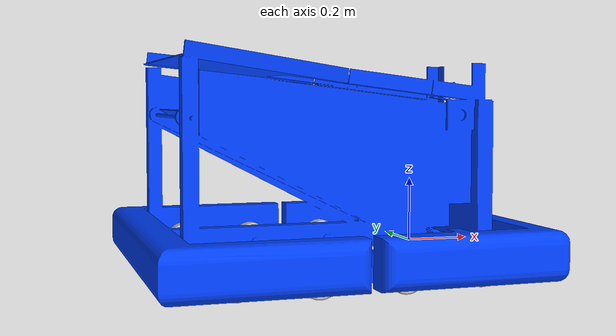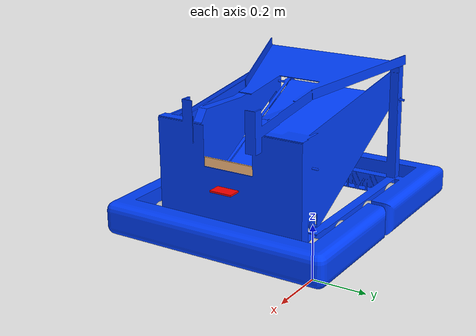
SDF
<?xml version="1.0" encoding="utf-8"?>
<sdf version="1.5">
  <model name="SimBot">
    <pose>0 0 0.00254000000000018 0 0 0</pose>

    <link name="Chassis">
      <gravity>1</gravity>
      <self_collide>0</self_collide>
      <pose>-0.417787729909074 -0.370900839250168 0.109796495445787 1.5707963267949 9.43689570931383E-16 -1.5707963267949</pose>
      <must_be_base_link>1</must_be_base_link>
      <velocity_decay>
        <linear>0</linear>
        <angular>0</angular>
      </velocity_decay>
      <inertial>
        <mass>48.6161363090323</mass>
        <pose>0 0 0 0 0 0</pose>
        <inertia>
          <ixx>6.85956286111502</ixx>
          <ixy>0.0505958405428025</ixy>
          <ixz>0.0454904755903607</ixz>
          <iyy>11.0679921953325</iyy>
          <iyz>0.0206054821955621</iyz>
          <izz>5.66912323899694</izz>
        </inertia>
      </inertial>
      <collision name="Chassis_collision">
        <pose>0.00374916074983288 -0.143685830615581 -0.417787729909074 0 0 0</pose>
        <geometry>
          <mesh>
            <scale>1 1 1</scale>
            <uri>model://SimBot/meshes/Chassis_col.STL</uri>
          </mesh>
        </geometry>
        <surface>
          <contact>
            <ode />
          </contact>
          <friction>
            <ode>
              <mu>0</mu>
              <mu2>0</mu2>
            </ode>
          </friction>
        </surface>
      </collision>
      <visual name="Chassis_visual">
        <pose>0.00374916074983288 -0.143685830615581 -0.417787729909074 0 0 0</pose>
        <material>
          <ambient>0 0.250980392156863 1 1</ambient>
          <diffuse>0 0.250980392156863 1 1</diffuse>
        </material>
        <geometry>
          <mesh>
            <scale>1 1 1</scale>
            <uri>model://SimBot/meshes/Chassis.STL</uri>
          </mesh>
        </geometry>
      </visual>
      <sensor name="ChassisCamera" type="camera">
        <visualize>1</visualize>
        <always_on>1</always_on>
        <updateRate>30.0</updateRate>
        <pose>0.17 0.23 -0.37 -1.57 1.57000 0.0</pose>
        <camera name="Chassiscamera">
          <horizontal_fov>0.87</horizontal_fov>
          <image>
            <width>320</width>
            <height>240</height>
          </image>
          <clip>
            <near>0.1</near>
            <far>30</far>
          </clip>
          <save enabled="true">
              <path>/tmp/target-camera</path>
          </save>
        </camera>
      </sensor>
      <sensor name="DriverCamera" type="camera">
        <visualize>0</visualize>
        <always_on>1</always_on>
        <updateRate>10.0</updateRate>
         <pose>0.0 0.23 -0.3 -1.57 1.57 0.0</pose>
        <camera name="Bodycamera">
          <horizontal_fov>1.0471975511966</horizontal_fov>
          <image>
            <width>320</width>
            <height>240</height>
          </image>
          <clip>
            <near>0.01</near>
            <far>30</far>
          </clip>
          <save enabled="true">
              <path>/tmp/driver-camera</path>
          </save>
        </camera>
      </sensor>
      <sensor name="ChassisUltrasonic" type="sonar">
        <always_on>1</always_on>
        <visualize>0</visualize>
        <pose>0.17 0.318095647047724 -0.369811570125635 -0.2 0.2 0</pose>
        <sonar>
          <min>0.1</min>
          <max>2</max>
          <radius>0.2</radius>
        </sonar>
      </sensor>
    </link>
    <link name="L1Wheel">
      <gravity>1</gravity>
      <self_collide>0</self_collide>
      <pose>-0.114300000000001 -0.0431800000000009 0.0349249999999985 1.5707963267949 9.43689570931383E-16 -1.5707963267949</pose>
      <must_be_base_link>0</must_be_base_link>
      <velocity_decay>
        <linear>0</linear>
        <angular>0</angular>
      </velocity_decay>
      <inertial>
        <mass>0.408395441319621</mass>
        <pose>0 0 0 0 0 0</pose>
        <inertia>
          <ixx>0.00522885625259631</ixx>
          <ixy>0</ixy>
          <ixz>0</ixz>
          <iyy>0.00347976426556731</iyy>
          <iyz>0</iyz>
          <izz>0.00347976426556731</izz>
        </inertia>
      </inertial>
      <collision name="L1Wheel_collision">
        <pose>0.33147 -0.0688143351697925 -0.1143 0 0 0</pose>
        <geometry>
          <mesh>
            <scale>1 1 1</scale>
            <uri>model://SimBot/meshes/L1Wheel_col.STL</uri>
          </mesh>
        </geometry>
        <surface>
          <contact>
            <ode />
          </contact>
          <friction>
            <ode>
              <mu>1</mu>
              <mu2>1</mu2>
            </ode>
          </friction>
        </surface>
      </collision>
      <visual name="L1Wheel_visual">
        <pose>0.33147 -0.0688143351697925 -0.1143 0 0 0</pose>
        <material>
          <ambient>0.752941176470588 0.752941176470588 0.752941176470588 1</ambient>
          <diffuse>0.752941176470588 0.752941176470588 0.752941176470588 1</diffuse>
        </material>
        <geometry>
          <mesh>
            <scale>1 1 1</scale>
            <uri>model://SimBot/meshes/L1Wheel.STL</uri>
          </mesh>
        </geometry>
      </visual>
    </link>
    <joint name="Chassis-L1Wheel" type="revolute">
      <parent>Chassis</parent>
      <child>L1Wheel</child>
      <pose>0.02286 9.71445146547012E-17 1.38777878078145E-17 0 0 0</pose>
      <axis>
        <xyz>-1 -3.45075536041801E-15 0</xyz>
        <dynamics>
          <damping>1</damping>
          <friction>1</friction>
        </dynamics>
        <limit>
          <effort>100</effort>
        </limit>
      </axis>
    </joint>
    <link name="L2Wheel">
      <gravity>1</gravity>
      <self_collide>0</self_collide>
      <pose>-0.315134153322 -0.043180000000001 0.0285749999999969 1.5707963267949 9.43689570931383E-16 -1.5707963267949</pose>
      <must_be_base_link>0</must_be_base_link>
      <velocity_decay>
        <linear>0</linear>
        <angular>0</angular>
      </velocity_decay>
      <inertial>
        <mass>0.408395441319621</mass>
        <pose>0 0 0 0 0 0</pose>
        <inertia>
          <ixx>0.00522885625259631</ixx>
          <ixy>0</ixy>
          <ixz>0</ixz>
          <iyy>0.00347976426556731</iyy>
          <iyz>0</iyz>
          <izz>0.00347976426556731</izz>
        </inertia>
      </inertial>
      <collision name="L2Wheel_collision">
        <pose>0.33147 -0.0624643351697909 -0.315134153322 0 0 0</pose>
        <geometry>
          <mesh>
            <scale>1 1 1</scale>
            <uri>model://SimBot/meshes/L2Wheel_col.STL</uri>
          </mesh>
        </geometry>
        <surface>
          <contact>
            <ode />
          </contact>
          <friction>
            <ode>
              <mu>1</mu>
              <mu2>1</mu2>
            </ode>
          </friction>
        </surface>
      </collision>
      <visual name="L2Wheel_visual">
        <pose>0.33147 -0.0624643351697909 -0.315134153322 0 0 0</pose>
        <material>
          <ambient>0.752941176470588 0.752941176470588 0.752941176470588 1</ambient>
          <diffuse>0.752941176470588 0.752941176470588 0.752941176470588 1</diffuse>
        </material>
        <geometry>
          <mesh>
            <scale>1 1 1</scale>
            <uri>model://SimBot/meshes/L2Wheel.STL</uri>
          </mesh>
        </geometry>
      </visual>
    </link>
    <joint name="Chassis-L2Wheel" type="revolute">
      <parent>Chassis</parent>
      <child>L2Wheel</child>
      <pose>0.02286 9.71445146547012E-17 0 0 0 0</pose>
      <axis>
        <xyz>-1 -3.52264609709339E-15 0</xyz>
        <dynamics>
          <damping>1</damping>
          <friction>1</friction>
        </dynamics>
        <limit>
          <effort>100</effort>
        </limit>
      </axis>
    </joint>
    <link name="L3Wheel">
      <gravity>1</gravity>
      <self_collide>0</self_collide>
      <pose>-0.535765846678 -0.0431800000000008 0.0285749999999952 1.5707963267949 9.43689570931383E-16 -1.5707963267949</pose>
      <must_be_base_link>0</must_be_base_link>
      <velocity_decay>
        <linear>0</linear>
        <angular>0</angular>
      </velocity_decay>
      <inertial>
        <mass>0.408395441319621</mass>
        <pose>0 0 0 0 0 0</pose>
        <inertia>
          <ixx>0.00522885625259631</ixx>
          <ixy>0</ixy>
          <ixz>0</ixz>
          <iyy>0.00347976426556731</iyy>
          <iyz>0</iyz>
          <izz>0.00347976426556731</izz>
        </inertia>
      </inertial>
      <collision name="L3Wheel_collision">
        <pose>0.33147 -0.0624643351697891 -0.535765846678 0 0 0</pose>
        <geometry>
          <mesh>
            <scale>1 1 1</scale>
            <uri>model://SimBot/meshes/L3Wheel_col.STL</uri>
          </mesh>
        </geometry>
        <surface>
          <contact>
            <ode />
          </contact>
          <friction>
            <ode>
              <mu>1</mu>
              <mu2>1</mu2>
            </ode>
          </friction>
        </surface>
      </collision>
      <visual name="L3Wheel_visual">
        <pose>0.33147 -0.0624643351697891 -0.535765846678 0 0 0</pose>
        <material>
          <ambient>0.752941176470588 0.752941176470588 0.752941176470588 1</ambient>
          <diffuse>0.752941176470588 0.752941176470588 0.752941176470588 1</diffuse>
        </material>
        <geometry>
          <mesh>
            <scale>1 1 1</scale>
            <uri>model://SimBot/meshes/L3Wheel.STL</uri>
          </mesh>
        </geometry>
      </visual>
    </link>
    <joint name="Chassis-L3Wheel" type="revolute">
      <parent>Chassis</parent>
      <child>L3Wheel</child>
      <pose>0.0228600000000002 9.0205620750794E-17 0 0 0 0</pose>
      <axis>
        <xyz>-1 -3.52264609709339E-15 0</xyz>
        <dynamics>
          <damping>1</damping>
          <friction>1</friction>
        </dynamics>
        <limit>
          <effort>100</effort>
        </limit>
      </axis>
    </joint>
    <link name="L4Wheel">
      <gravity>1</gravity>
      <self_collide>0</self_collide>
      <pose>-0.7366 -0.0431800000000009 0.0349249999999936 1.5707963267949 9.43689570931383E-16 -1.5707963267949</pose>
      <must_be_base_link>0</must_be_base_link>
      <velocity_decay>
        <linear>0</linear>
        <angular>0</angular>
      </velocity_decay>
      <inertial>
        <mass>0.408395441319621</mass>
        <pose>0 0 0 0 0 0</pose>
        <inertia>
          <ixx>0.00522885625259631</ixx>
          <ixy>0</ixy>
          <ixz>0</ixz>
          <iyy>0.00347976426556731</iyy>
          <iyz>0</iyz>
          <izz>0.00347976426556731</izz>
        </inertia>
      </inertial>
      <collision name="L4Wheel_collision">
        <pose>0.33147 -0.0688143351697875 -0.7366 0 0 0</pose>
        <geometry>
          <mesh>
            <scale>1 1 1</scale>
            <uri>model://SimBot/meshes/L4Wheel_col.STL</uri>
          </mesh>
        </geometry>
        <surface>
          <contact>
            <ode />
          </contact>
          <friction>
            <ode>
              <mu>1</mu>
              <mu2>1</mu2>
            </ode>
          </friction>
        </surface>
      </collision>
      <visual name="L4Wheel_visual">
        <pose>0.33147 -0.0688143351697875 -0.7366 0 0 0</pose>
        <material>
          <ambient>0.752941176470588 0.752941176470588 0.752941176470588 1</ambient>
          <diffuse>0.752941176470588 0.752941176470588 0.752941176470588 1</diffuse>
        </material>
        <geometry>
          <mesh>
            <scale>1 1 1</scale>
            <uri>model://SimBot/meshes/L4Wheel.STL</uri>
          </mesh>
        </geometry>
      </visual>
    </link>
    <joint name="Chassis-L4Wheel" type="revolute">
      <parent>Chassis</parent>
      <child>L4Wheel</child>
      <pose>0.0228600000000002 9.71445146547012E-17 2.22044604925031E-16 0 0 0</pose>
      <axis>
        <xyz>-1 -3.45075536041802E-15 0</xyz>
        <dynamics>
          <damping>1</damping>
          <friction>1</friction>
        </dynamics>
        <limit>
          <effort>100</effort>
        </limit>
      </axis>
    </joint>
    <link name="R1Wheel">
      <gravity>1</gravity>
      <self_collide>0</self_collide>
      <pose>-0.114299999999999 -0.706120000000001 0.0349249999999995 1.5707963267949 9.43689570931383E-16 -1.5707963267949</pose>
      <must_be_base_link>0</must_be_base_link>
      <velocity_decay>
        <linear>0</linear>
        <angular>0</angular>
      </velocity_decay>
      <inertial>
        <mass>0.408395441319621</mass>
        <pose>0 0 0 0 0 0</pose>
        <inertia>
          <ixx>0.00522885625259631</ixx>
          <ixy>0</ixy>
          <ixz>0</ixz>
          <iyy>0.00347976426556731</iyy>
          <iyz>0</iyz>
          <izz>0.00347976426556731</izz>
        </inertia>
      </inertial>
      <collision name="R1Wheel_collision">
        <pose>-0.33147 -0.0688143351697941 -0.114299999999999 0 0 0</pose>
        <geometry>
          <mesh>
            <scale>1 1 1</scale>
            <uri>model://SimBot/meshes/R1Wheel_col.STL</uri>
          </mesh>
        </geometry>
        <surface>
          <contact>
            <ode />
          </contact>
          <friction>
            <ode>
              <mu>1</mu>
              <mu2>1</mu2>
            </ode>
          </friction>
        </surface>
      </collision>
      <visual name="R1Wheel_visual">
        <pose>-0.33147 -0.0688143351697941 -0.114299999999999 0 0 0</pose>
        <material>
          <ambient>0.752941176470588 0.752941176470588 0.752941176470588 1</ambient>
          <diffuse>0.752941176470588 0.752941176470588 0.752941176470588 1</diffuse>
        </material>
        <geometry>
          <mesh>
            <scale>1 1 1</scale>
            <uri>model://SimBot/meshes/R1Wheel.STL</uri>
          </mesh>
        </geometry>
      </visual>
    </link>
    <joint name="Chassis-R1Wheel" type="revolute">
      <parent>Chassis</parent>
      <child>R1Wheel</child>
      <pose>-0.0228599999999999 0 0 0 0 0</pose>
      <axis>
        <xyz>1 0 0</xyz>
        <dynamics>
          <damping>1</damping>
          <friction>1</friction>
        </dynamics>
        <limit>
          <effort>100</effort>
        </limit>
      </axis>
    </joint>
    <link name="R2Wheel">
      <gravity>1</gravity>
      <self_collide>0</self_collide>
      <pose>-0.315134153321999 -0.706120000000001 0.028575000000001 1.5707963267949 9.43689570931383E-16 -1.5707963267949</pose>
      <must_be_base_link>0</must_be_base_link>
      <velocity_decay>
        <linear>0</linear>
        <angular>0</angular>
      </velocity_decay>
      <inertial>
        <mass>0.408395441319621</mass>
        <pose>0 0 0 0 0 0</pose>
        <inertia>
          <ixx>0.00522885625259631</ixx>
          <ixy>0</ixy>
          <ixz>0</ixz>
          <iyy>0.00347976426556731</iyy>
          <iyz>0</iyz>
          <izz>0.00347976426556731</izz>
        </inertia>
      </inertial>
      <collision name="R2Wheel_collision">
        <pose>-0.33147 -0.0624643351697957 -0.315134153321999 0 0 0</pose>
        <geometry>
          <mesh>
            <scale>1 1 1</scale>
            <uri>model://SimBot/meshes/R2Wheel_col.STL</uri>
          </mesh>
        </geometry>
        <surface>
          <contact>
            <ode />
          </contact>
          <friction>
            <ode>
              <mu>1</mu>
              <mu2>1</mu2>
            </ode>
          </friction>
        </surface>
      </collision>
      <visual name="R2Wheel_visual">
        <pose>-0.33147 -0.0624643351697957 -0.315134153321999 0 0 0</pose>
        <material>
          <ambient>0.752941176470588 0.752941176470588 0.752941176470588 1</ambient>
          <diffuse>0.752941176470588 0.752941176470588 0.752941176470588 1</diffuse>
        </material>
        <geometry>
          <mesh>
            <scale>1 1 1</scale>
            <uri>model://SimBot/meshes/R2Wheel.STL</uri>
          </mesh>
        </geometry>
      </visual>
    </link>
    <joint name="Chassis-R2Wheel" type="revolute">
      <parent>Chassis</parent>
      <child>R2Wheel</child>
      <pose>-0.02286 0 0 0 0 0</pose>
      <axis>
        <xyz>1 0 0</xyz>
        <dynamics>
          <damping>1</damping>
          <friction>1</friction>
        </dynamics>
        <limit>
          <effort>100</effort>
        </limit>
      </axis>
    </joint>
    <link name="R3Wheel">
      <gravity>1</gravity>
      <self_collide>0</self_collide>
      <pose>-0.535765846677999 -0.706120000000001 0.0285750000000027 1.5707963267949 9.43689570931383E-16 -1.5707963267949</pose>
      <must_be_base_link>0</must_be_base_link>
      <velocity_decay>
        <linear>0</linear>
        <angular>0</angular>
      </velocity_decay>
      <inertial>
        <mass>0.408395441319621</mass>
        <pose>0 0 0 0 0 0</pose>
        <inertia>
          <ixx>0.00522885625259631</ixx>
          <ixy>0</ixy>
          <ixz>0</ixz>
          <iyy>0.00347976426556731</iyy>
          <iyz>0</iyz>
          <izz>0.00347976426556731</izz>
        </inertia>
      </inertial>
      <collision name="R3Wheel_collision">
        <pose>-0.33147 -0.0624643351697973 -0.535765846677999 0 0 0</pose>
        <geometry>
          <mesh>
            <scale>1 1 1</scale>
            <uri>model://SimBot/meshes/R3Wheel_col.STL</uri>
          </mesh>
        </geometry>
        <surface>
          <contact>
            <ode />
          </contact>
          <friction>
            <ode>
              <mu>1</mu>
              <mu2>1</mu2>
            </ode>
          </friction>
        </surface>
      </collision>
      <visual name="R3Wheel_visual">
        <pose>-0.33147 -0.0624643351697973 -0.535765846677999 0 0 0</pose>
        <material>
          <ambient>0.752941176470588 0.752941176470588 0.752941176470588 1</ambient>
          <diffuse>0.752941176470588 0.752941176470588 0.752941176470588 1</diffuse>
        </material>
        <geometry>
          <mesh>
            <scale>1 1 1</scale>
            <uri>model://SimBot/meshes/R3Wheel.STL</uri>
          </mesh>
        </geometry>
      </visual>
    </link>
    <joint name="Chassis-R3Wheel" type="revolute">
      <parent>Chassis</parent>
      <child>R3Wheel</child>
      <pose>-0.02286 0 0 0 0 0</pose>
      <axis>
        <xyz>1 0 0</xyz>
        <dynamics>
          <damping>1</damping>
          <friction>1</friction>
        </dynamics>
        <limit>
          <effort>100</effort>
        </limit>
      </axis>
    </joint>
    <link name="R4Wheel">
      <gravity>1</gravity>
      <self_collide>0</self_collide>
      <pose>-0.736599999999999 -0.706120000000001 0.0349250000000045 1.5707963267949 9.43689570931383E-16 -1.5707963267949</pose>
      <must_be_base_link>0</must_be_base_link>
      <velocity_decay>
        <linear>0</linear>
        <angular>0</angular>
      </velocity_decay>
      <inertial>
        <mass>0.408395441319621</mass>
        <pose>0 0 0 0 0 0</pose>
        <inertia>
          <ixx>0.00522885625259631</ixx>
          <ixy>0</ixy>
          <ixz>0</ixz>
          <iyy>0.00347976426556731</iyy>
          <iyz>0</iyz>
          <izz>0.00347976426556731</izz>
        </inertia>
      </inertial>
      <collision name="R4Wheel_collision">
        <pose>-0.33147 -0.068814335169799 -0.736599999999999 0 0 0</pose>
        <geometry>
          <mesh>
            <scale>1 1 1</scale>
            <uri>model://SimBot/meshes/R4Wheel_col.STL</uri>
          </mesh>
        </geometry>
        <surface>
          <contact>
            <ode />
          </contact>
          <friction>
            <ode>
              <mu>1</mu>
              <mu2>1</mu2>
            </ode>
          </friction>
        </surface>
      </collision>
      <visual name="R4Wheel_visual">
        <pose>-0.33147 -0.068814335169799 -0.736599999999999 0 0 0</pose>
        <material>
          <ambient>0.752941176470588 0.752941176470588 0.752941176470588 1</ambient>
          <diffuse>0.752941176470588 0.752941176470588 0.752941176470588 1</diffuse>
        </material>
        <geometry>
          <mesh>
            <scale>1 1 1</scale>
            <uri>model://SimBot/meshes/R4Wheel.STL</uri>
          </mesh>
        </geometry>
      </visual>
    </link>
    <joint name="Chassis-R4Wheel" type="revolute">
      <parent>Chassis</parent>
      <child>R4Wheel</child>
      <pose>-0.02286 8.32667268468867E-17 2.22044604925031E-16 0 0 0</pose>
      <axis>
        <xyz>1 0 0</xyz>
        <dynamics>
          <damping>1</damping>
          <friction>1</friction>
        </dynamics>
        <limit>
          <effort>100</effort>
        </limit>
      </axis>
    </joint>
    <link name="BallPusher">
      <gravity>1</gravity>
      <self_collide>0</self_collide>
      <pose>-0.238570181492384 -0.375450100000002 0.19377226965446 1.5707963267949 9.43689570931383E-16 -1.5707963267949</pose>
      <must_be_base_link>0</must_be_base_link>
      <velocity_decay>
        <linear>0</linear>
        <angular>0</angular>
      </velocity_decay>
      <inertial>
        <mass>0.35512835424996</mass>
        <pose>0 0 0 0 0 0</pose>
        <inertia>
          <ixx>0.00398094008995737</ixx>
          <ixy>3.11690149718261E-17</ixy>
          <ixz>2.20178364811434E-17</ixz>
          <iyy>0.0516965584441365</iyy>
          <iyz>0.00161224196633065</iyz>
          <izz>0.0535800222476808</izz>
        </inertia>
      </inertial>
      <collision name="BallPusher_collision">
        <pose>-0.000800100000000598 -0.227661604824254 -0.238570181492384 0 0 0</pose>
        <geometry>
          <mesh>
            <scale>1 1 1</scale>
            <uri>model://SimBot/meshes/BallPusher_col.STL</uri>
          </mesh>
        </geometry>
        <surface>
          <contact>
            <ode />
          </contact>
          <friction>
            <ode>
              <mu>1</mu>
              <mu2>1</mu2>
            </ode>
          </friction>
        </surface>
      </collision>
      <visual name="BallPusher_visual">
        <pose>-0.000800100000000598 -0.227661604824254 -0.238570181492384 0 0 0</pose>
        <material>
          <ambient>1 0.752941176470588 0.501960784313725 1</ambient>
          <diffuse>1 0.752941176470588 0.501960784313725 1</diffuse>
        </material>
        <geometry>
          <mesh>
            <scale>1 1 1</scale>
            <uri>model://SimBot/meshes/BallPusher.STL</uri>
          </mesh>
        </geometry>
      </visual>
    </link>
    <joint name="Chassis-BallPusher" type="prismatic">
      <parent>Chassis</parent>
      <child>BallPusher</child>
      <pose>0 0 0 0 0 0</pose>
      <axis>
       <xyz>0 0.5 1</xyz>
        <dynamics>
          <damping>1</damping>
          <friction>1</friction>
        </dynamics>
        <limit>
          <upper>0.5</upper>
          <lower>0.0</lower>
          <effort>100</effort>
        </limit>
      </axis>
    </joint>
    <link name="GearPlate">
      <gravity>1</gravity>
      <self_collide>0</self_collide>
      <pose>-0.034925 -0.374650000000001 0.225425 1.5707963267949 9.43689570931383E-16 -1.5707963267949</pose>
      <must_be_base_link>0</must_be_base_link>
      <velocity_decay>
        <linear>0</linear>
        <angular>0</angular>
      </velocity_decay>
      <inertial>
        <mass>0.0286773620000001</mass>
        <pose>0 0 0 0 0 0</pose>
        <inertia>
          <ixx>0.001</ixx>
          <ixy>0</ixy>
          <ixz>0</ixz>
          <iyy>0.003</iyy>
          <iyz>0</iyz>
          <izz>0.001</izz>
        </inertia>
      </inertial>
      <collision name="GearPlate_collision">
        <pose>-1.33685024238989E-16 -0.259314335169794 -0.034925 0 0 0</pose>
        <geometry>
          <mesh>
            <scale>1 1 1</scale>
            <uri>model://SimBot/meshes/GearPlate_col.STL</uri>
          </mesh>
        </geometry>
        <surface>
          <contact>
            <ode />
          </contact>
          <friction>
            <ode>
              <mu>1</mu>
              <mu2>1</mu2>
            </ode>
          </friction>
        </surface>
      </collision>
      <visual name="GearPlate_visual">
        <pose>-1.33685024238989E-16 -0.259314335169794 -0.034925 0 0 0</pose>
        <material>
          <ambient>1 0 0 1</ambient>
          <diffuse>1 0 0 1</diffuse>
        </material>
        <geometry>
          <mesh>
            <scale>1 1 1</scale>
            <uri>model://SimBot/meshes/GearPlate.STL</uri>
          </mesh>
        </geometry>
      </visual>
    </link>
    <joint name="Chassis-GearPlate" type="prismatic">
      <parent>Chassis</parent>
      <child>GearPlate</child>
      <pose>-0.04445 0.00317500000000004 -0.0254 0 0 0</pose>
      <axis>
        <xyz>0 0 1</xyz>
        <dynamics>
          <damping>0.2</damping>
          <friction>0.2</friction>
        </dynamics>
        <limit>
          <upper>0.05</upper>
          <lower>0.0</lower>
          <effort>100</effort>
        </limit>
      </axis>
    </joint>

    <plugin name="Chassis_rangefinder" filename="librangefinder.so">
      <topic>/gazebo/frc/simulator/analog/0</topic>
      <sensor>ChassisUltrasonic</sensor>
    </plugin>
    <plugin name="Chassis-L1Wheel_motor" filename="libdc_motor.so">
      <joint>Chassis-L1Wheel</joint>
      <topic>/gazebo/frc/simulator/pwm/2</topic>
      <multiplier>25</multiplier>
    </plugin>
    <plugin name="Chassis-L2Wheel_motor" filename="libdc_motor.so">
      <joint>Chassis-L2Wheel</joint>
      <topic>/gazebo/frc/simulator/pwm/2</topic>
      <multiplier>25</multiplier>
    </plugin>
    <plugin name="Chassis-L2Wheel_encoder" filename="libencoder.so">
      <joint>Chassis-L2Wheel</joint>
      <topic>/gazebo/frc/simulator/dio/3/4</topic>
      <units>degrees</units>
    </plugin>
    <plugin name="Chassis-L3Wheel_motor" filename="libdc_motor.so">
      <joint>Chassis-L3Wheel</joint>
      <topic>/gazebo/frc/simulator/pwm/2</topic>
      <multiplier>25</multiplier>
    </plugin>
    <plugin name="Chassis-L4Wheel_motor" filename="libdc_motor.so">
      <joint>Chassis-L4Wheel</joint>
      <topic>/gazebo/frc/simulator/pwm/2</topic>
      <multiplier>25</multiplier>
    </plugin>
    <plugin name="Chassis-R1Wheel_motor" filename="libdc_motor.so">
      <joint>Chassis-R1Wheel</joint>
      <topic>/gazebo/frc/simulator/pwm/4</topic>
      <multiplier>25</multiplier>
    </plugin>
    <plugin name="Chassis-R2Wheel_motor" filename="libdc_motor.so">
      <joint>Chassis-R2Wheel</joint>
      <topic>/gazebo/frc/simulator/pwm/4</topic>
      <multiplier>25</multiplier>
    </plugin>
    <plugin name="Chassis-R2Wheel_encoder" filename="libencoder.so">
      <joint>Chassis-R2Wheel</joint>
      <topic>/gazebo/frc/simulator/dio/7/8</topic>
      <units>degrees</units>
    </plugin>
    <plugin name="Chassis-R3Wheel_motor" filename="libdc_motor.so">
      <joint>Chassis-R3Wheel</joint>
      <topic>/gazebo/frc/simulator/pwm/4</topic>
      <multiplier>25</multiplier>
    </plugin>
    <plugin name="Chassis-R4Wheel_motor" filename="libdc_motor.so">
      <joint>Chassis-R4Wheel</joint>
      <topic>/gazebo/frc/simulator/pwm/4</topic>
      <multiplier>25</multiplier>
    </plugin>
    <plugin name="Chassis-Gearplate" filename="libpneumatic_piston.so">
      <joint>Chassis-GearPlate</joint>
      <direction>forward</direction>
      <forward-force>1</forward-force>
      <reverse-force>1</reverse-force>
      <topic>/gazebo/frc/simulator/pneumatic/1/1</topic>
    </plugin>
    <plugin name="Chassis-BallPusher_motor" filename="libdc_motor.so">
      <joint>Chassis-BallPusher</joint>
      <topic>/gazebo/frc/simulator/pwm/5</topic>
      <multiplier>25</multiplier>
    </plugin>
    <plugin name="BallPusher_fwdlimit" filename="liblimit_switch.so">
      <joint>Chassis-BallPusher</joint>
      <topic>/gazebo/frc/simulator/dio/10</topic>
      <units>radians</units>
      <type>internal</type>
      <min>0.45</min>
      <max>0.5</max>
    </plugin>
    <plugin name="BallPusher_revlimit" filename="liblimit_switch.so">
      <joint>Chassis-BallPusher</joint>
      <topic>/gazebo/frc/simulator/dio/9</topic>
      <units>radians</units>
      <type>internal</type>
      <min>0</min>
      <max>0.1</max>
    </plugin>
    <plugin name="Chassis" filename="libgyro.so">
      <link>Chassis</link>
      <topic>/gazebo/frc/simulator/analog/3</topic>
      <units>degrees</units>
      <axis>yaw</axis>
    </plugin>

  </model>
</sdf>
